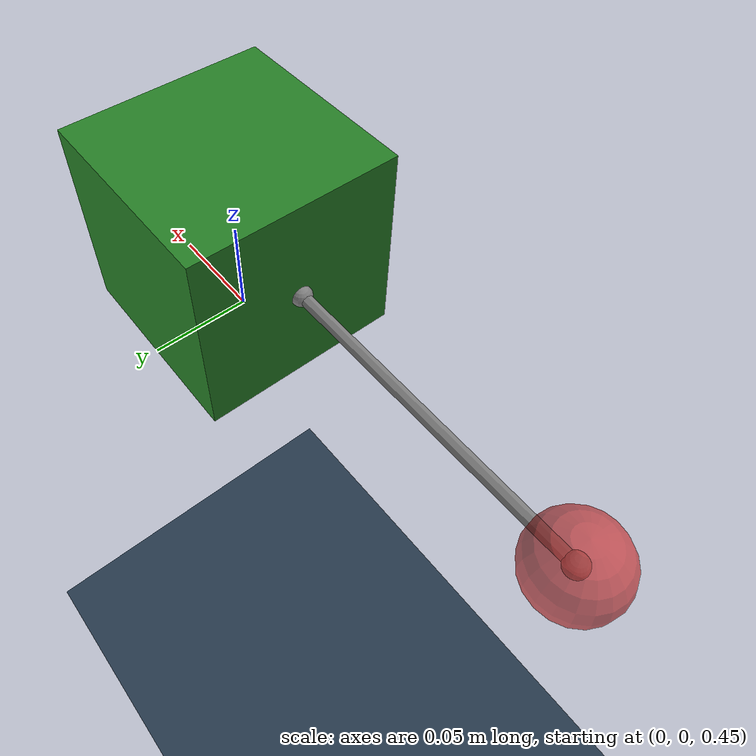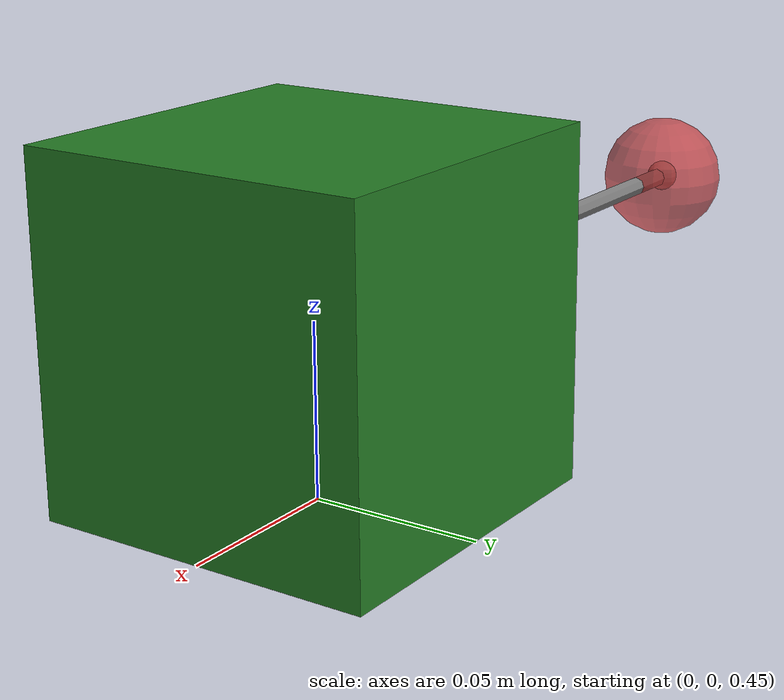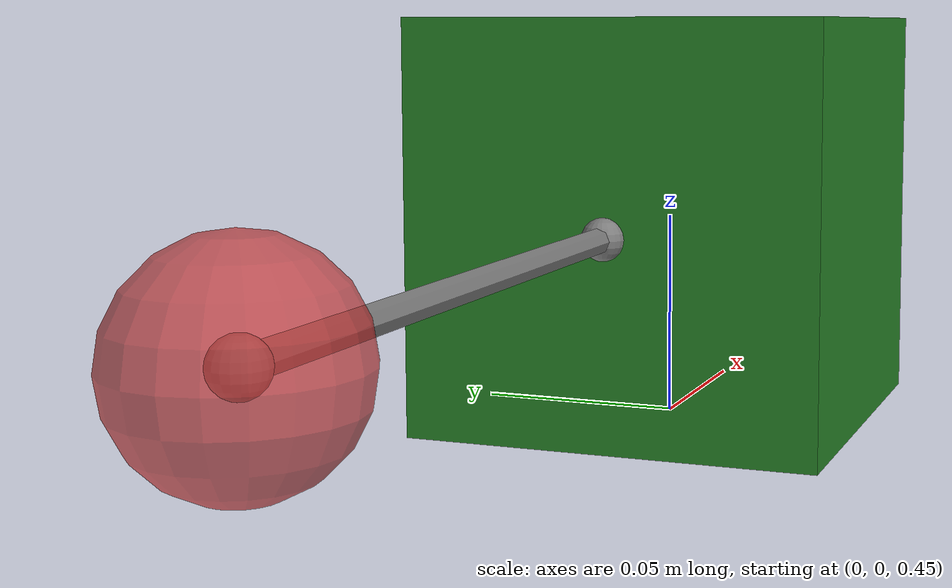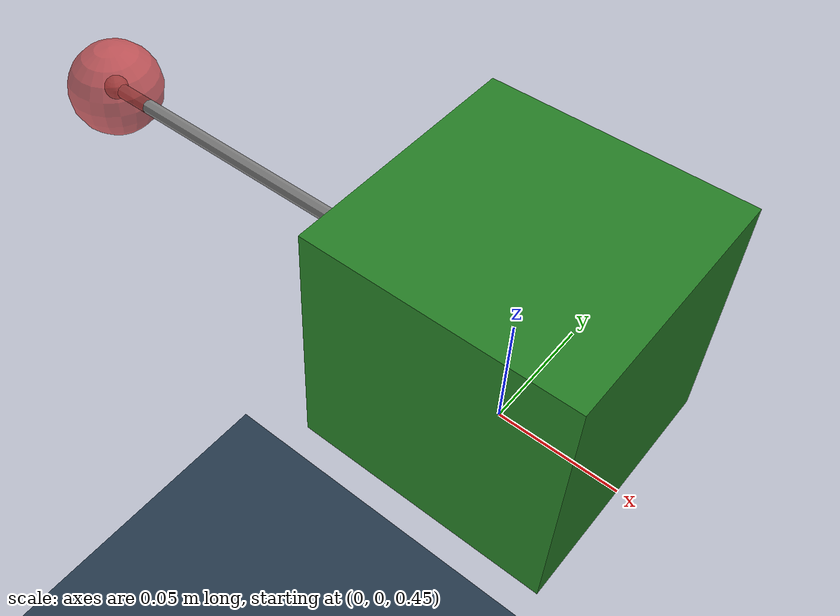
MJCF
<mujoco model="simple_cube">

    <include file="scene.xml"/>

    <option solver="CG" tolerance="1e-6"/>

    <size nconmax="50" njmax="500" nstack="50000"/>

    <worldbody>
      <body name="link1" pos="0 0 0.5">
          <geom type="box" size="0.05 0.05 0.05" rgba="0.15 0.5 0.15 1"/>
          <joint name="q1" type="slide" pos="0 0 0.2" axis="1 0 0" frictionloss="0.0" damping="0.0"/>
          <site name="site_link1" pos="-0.05 0 0"/>
      </body>

      <body name="target_massless" pos="-0.2 0 0.5">
          <joint name="q_target" type="slide" axis="1 0 0" frictionloss="0.0" damping="0.0"/>
          <geom type="sphere" size="0.02" rgba="0.8 0.2 0.2 0.7"/>
          <site name="site_target" pos="0 0 0"/>
      </body>
    </worldbody>

    <tendon>
        <spatial name="tendon_spring_damper" stiffness="10" damping="1">
            <site site="site_link1"/>
            <site site="site_target"/>
        </spatial>
    </tendon>

    <actuator>
        <position name="target_position" joint="q_target" kp="100"/>
        <motor name="motor_1" joint="q1" gear="1"/>
    </actuator>
</mujoco>

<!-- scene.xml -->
<mujoco>
    <statistic extent="2" meansize=".05"/>

    <option timestep="0.005" solver="Newton" iterations="30" tolerance="1e-10" jacobian="sparse" cone="pyramidal"/>

    <visual>
        <rgba haze="0.15 0.25 0.35 1"/>
        <quality shadowsize="2048"/>
        <map stiffness="700" shadowscale="0.5" fogstart="10" fogend="15" zfar="40" haze="0.3"/>
    </visual>

    <asset>
        <texture type="skybox" builtin="gradient" rgb1="0.3 0.5 0.7" rgb2="0 0 0" width="512" height="512"/>
        <texture name="texplane" type="2d" builtin="checker" rgb1=".2 .3 .4" rgb2=".1 0.15 0.2"
            width="512" height="512" mark="cross" markrgb=".8 .8 .8"/>

        <material name="matplane" reflectance="0.3" texture="texplane" texrepeat="1 1" texuniform="true"/>
    </asset>

    <worldbody>
        <light directional="true" diffuse=".4 .4 .4" specular="0.1 0.1 0.1" pos="0 0 5.0" dir="0 0 -1" castshadow="false"/>
        <light directional="true" diffuse=".6 .6 .6" specular="0.2 0.2 0.2" pos="0 0 4" dir="0 0 -1"/>

        <geom name="ground" type="plane" size="0 0 1" pos="0 0 0" quat="1 0 0 0" material="matplane" condim="1" friction="0 0 0"/>

    </worldbody>
</mujoco>
